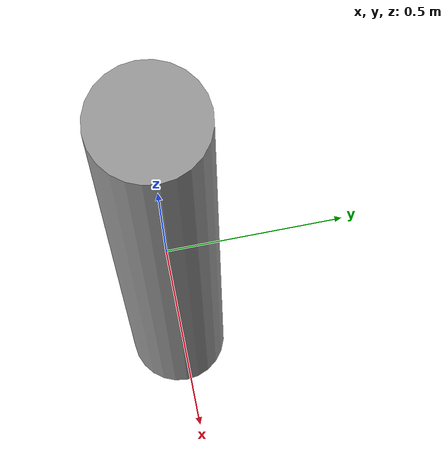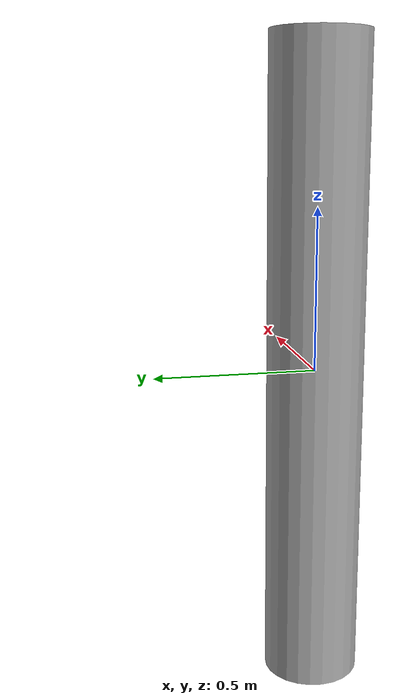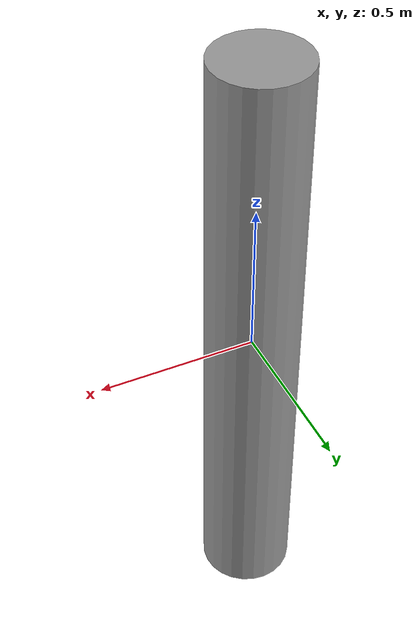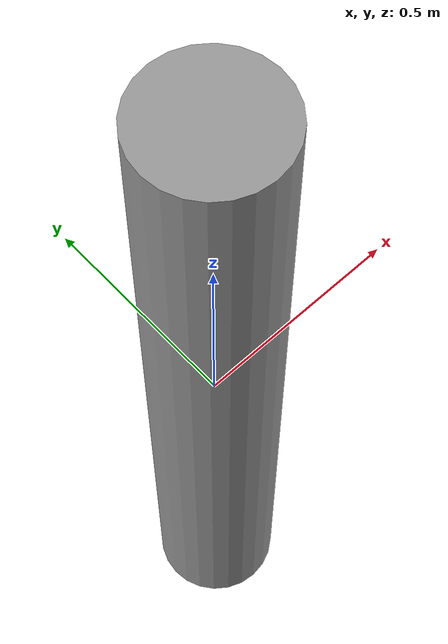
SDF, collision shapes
<?xml version='1.0'?>
<sdf version='1.6'>
  <model name='human_male_1'>
    <link name='link_0'>
        <visual name='visual'>
        <pose frame=''>0 0 0 0 -0 0</pose>
        <geometry>
          <mesh>
            <uri>model://human_male_1/meshes/eyeball.dae</uri>
            <scale>1 1 1</scale>
          </mesh>
        </geometry>
        <material>
          <lighting>1</lighting>
          <script>
            <uri>file://media/materials/scripts/gazebo.material</uri>
            <name>Gazebo/Grey</name>
          </script>
         <ambient>1 1 1 1</ambient>
          <diffuse>0.9 0.9 0.9 1</diffuse>
          <specular>0.01 0.01 0.01 1</specular>
          <emissive>0 0 0 1</emissive>
        </material>
        <cast_shadows>1</cast_shadows>
        <transparency>0</transparency>
      </visual>
      <collision name='collision'>
        <laser_retro>0</laser_retro>
        <max_contacts>10</max_contacts>
        <pose frame=''>0 0 0 0 -0 0</pose>
        <geometry>
          <cylinder>
            <radius>0.15</radius>
            <length>2</length>
          </cylinder>
        </geometry>

      </collision>
    </link>
    <link name='link_1'>

      <visual name='visual'>
        <pose frame=''>0 0 0 0 -0 0</pose>
        <geometry>
          <mesh>
            <uri>model://human_male_1/meshes/eyebrows.dae</uri>
            <scale>1 1 1</scale>
          </mesh>
        </geometry>
         <material>
          <script>
            <uri>model://human_male_1/materials/scripts</uri>
            <uri>model://human_male_1/materials/textures</uri>
            <name>hair_m_1_1</name>
          </script>
        </material>
        <cast_shadows>1</cast_shadows>
        <transparency>0</transparency>
      </visual>
      <collision name='collision'>
        <laser_retro>0</laser_retro>
        <max_contacts>10</max_contacts>
        <pose frame=''>0 0 0 0 -0 0</pose>
        <geometry>
          <cylinder>
            <radius>0.15</radius>
            <length>2</length>
          </cylinder>
        </geometry>

      </collision>
    </link>
    <link name='link_2'>

      <visual name='visual'>
        <pose frame=''>0 0 0 0 -0 0</pose>
        <geometry>
          <mesh>
            <uri>model://human_male_1/meshes/hair.dae</uri>
            <scale>1 1 1</scale>
          </mesh>
        </geometry>
       <material>
          <script>
            <uri>model://human_male_1/materials/scripts</uri>
            <uri>model://human_male_1/materials/textures</uri>
            <name>hair_m_1_1</name>
          </script>
        </material>
        <cast_shadows>1</cast_shadows>
        <transparency>0</transparency>
      </visual>
      <collision name='collision'>
        <laser_retro>0</laser_retro>
        <max_contacts>10</max_contacts>
        <pose frame=''>0 0 0 0 -0 0</pose>
        <geometry>
          <cylinder>
            <radius>0.15</radius>
            <length>2</length>
          </cylinder>
        </geometry>

      </collision>
    </link>
    <link name='link_3'>

      <visual name='visual'>
        <pose frame=''>0 0 0 0 -0 0</pose>
        <geometry>
          <mesh>
            <uri>model://human_male_1/meshes/lenses.dae</uri>
            <scale>1 1 1</scale>
          </mesh>
        </geometry>
        <material>
          <lighting>1</lighting>
          <script>
            <uri>file://media/materials/scripts/gazebo.material</uri>
            <name>Gazebo/Grey</name>
          </script>
          <ambient>0.4078    0.2431    0.0471 1</ambient>
          <diffuse>0.4078    0.2431    0.0471 1</diffuse>
          <specular>0.01 0.01 0.01 1</specular>
          <emissive>0 0 0 1</emissive>
        </material>
        <cast_shadows>1</cast_shadows>
        <transparency>0</transparency>
      </visual>
      <collision name='collision'>
        <laser_retro>0</laser_retro>
        <max_contacts>10</max_contacts>
        <pose frame=''>0 0 0 0 -0 0</pose>
        <geometry>
          <cylinder>
            <radius>0.15</radius>
            <length>2</length>
          </cylinder>
        </geometry>

      </collision>
    </link>
    <link name='link_4'>

      <visual name='visual'>
        <pose frame=''>0 0 0 0 -0 0</pose>
        <geometry>
          <mesh>
            <uri>model://human_male_1/meshes/pants.dae</uri>
            <scale>1 1 1</scale>
          </mesh>
        </geometry>
        <material>
          <lighting>1</lighting>
          <script>
            <uri>file://media/materials/scripts/gazebo.material</uri>
            <name>Gazebo/Grey</name>
          </script>
          <ambient>0.3529    0.3451    0.3294 1</ambient>
          <diffuse>0.3529    0.3451    0.3294 1</diffuse>
          <specular>0.01 0.01 0.01 1</specular>
          <emissive>0 0 0 1</emissive>
        </material>
        <cast_shadows>1</cast_shadows>
        <transparency>0</transparency>
      </visual>
      <collision name='collision'>
        <laser_retro>0</laser_retro>
        <max_contacts>10</max_contacts>
        <pose frame=''>0 0 0 0 -0 0</pose>
        <geometry>
          <cylinder>
            <radius>0.15</radius>
            <length>2</length>
          </cylinder>
        </geometry>

      </collision>
    </link>
    <link name='link_5'>

      <visual name='visual'>
        <pose frame=''>0 0 0 0 -0 0</pose>
        <geometry>
          <mesh>
            <uri>model://human_male_1/meshes/pupil.dae</uri>
            <scale>1 1 1</scale>
          </mesh>
        </geometry>
        <material>
          <lighting>1</lighting>
           <ambient>0 0 0 1</ambient>
          <diffuse>0 0 0 1</diffuse>
          <specular>0.01 0.01 0.01 1</specular>
          <emissive>0 0 0 1</emissive>
        </material>
        <cast_shadows>1</cast_shadows>
        <transparency>0</transparency>
      </visual>
      <collision name='collision'>
        <laser_retro>0</laser_retro>
        <max_contacts>10</max_contacts>
        <pose frame=''>0 0 0 0 -0 0</pose>
        <geometry>
          <cylinder>
            <radius>0.15</radius>
            <length>2</length>
          </cylinder>
        </geometry>

      </collision>
    </link>
    <link name='link_6'>

      <visual name='visual'>
        <pose frame=''>0 0 0 0 -0 0</pose>
        <geometry>
          <mesh>
            <uri>model://human_male_1/meshes/shirt.dae</uri>
            <scale>1 1 1</scale>
          </mesh>
        </geometry>
        <material>
          <lighting>1</lighting>
          <ambient>0.8706    0.8471    0.1608 1</ambient>
          <diffuse>0.8706    0.8471    0.1608 1</diffuse>
          <specular>0.01 0.01 0.01 1</specular>
          <emissive>0 0 0 1</emissive>
        </material>
        <cast_shadows>1</cast_shadows>
        <transparency>0</transparency>
      </visual>
      <collision name='collision'>
        <laser_retro>0</laser_retro>
        <max_contacts>10</max_contacts>
        <pose frame=''>0 0 0 0 -0 0</pose>
        <geometry>
          <cylinder>
            <radius>0.15</radius>
            <length>2</length>
          </cylinder>
        </geometry>

      </collision>
    </link>
    <link name='link_7'>
       <visual name='visual'>
        <pose frame=''>0 0 0 0 -0 0</pose>
        <geometry>
          <mesh>
            <uri>model://human_male_1/meshes/shoes.dae</uri>
            <scale>1 1 1</scale>
          </mesh>
        </geometry>
        <material>
          <lighting>1</lighting>
          <ambient>0.2000    0.1451    0.1451 1</ambient>
          <diffuse>0.2000    0.1451    0.1451 1</diffuse>
          <specular>0.01 0.01 0.01 1</specular>
          <emissive>0 0 0 1</emissive>
        </material>
        <cast_shadows>1</cast_shadows>
        <transparency>0</transparency>
      </visual>
      <collision name='collision'>
        <laser_retro>0</laser_retro>
        <max_contacts>10</max_contacts>
        <pose frame=''>0 0 0 0 -0 0</pose>
        <geometry>
          <cylinder>
            <radius>0.15</radius>
            <length>2</length>
          </cylinder>
        </geometry>

      </collision>
    </link>
    <link name='link_8'>

      <visual name='visual'>
        <pose frame=''>0 0 0 0 -0 0</pose>
        <geometry>
          <mesh>
            <uri>model://human_male_1/meshes/skin.dae</uri>
            <scale>1 1 1</scale>
          </mesh>
        </geometry>
             <material>
          <script>
            <uri>model://human_male_1/materials/scripts</uri>
            <uri>model://human_male_1/materials/textures</uri>
            <name>skin_m_1</name>
          </script>
        </material>
        <cast_shadows>1</cast_shadows>
        <transparency>0</transparency>
      </visual>
      <collision name='collision'>
        <laser_retro>0</laser_retro>
        <max_contacts>10</max_contacts>
        <pose frame=''>0 0 0 0 -0 0</pose>
        <geometry>
          <cylinder>
            <radius>0.15</radius>
            <length>2</length>
          </cylinder>
        </geometry>

      </collision>
    </link>
    <static>1</static>
    <allow_auto_disable>1</allow_auto_disable>
  </model>
</sdf>
